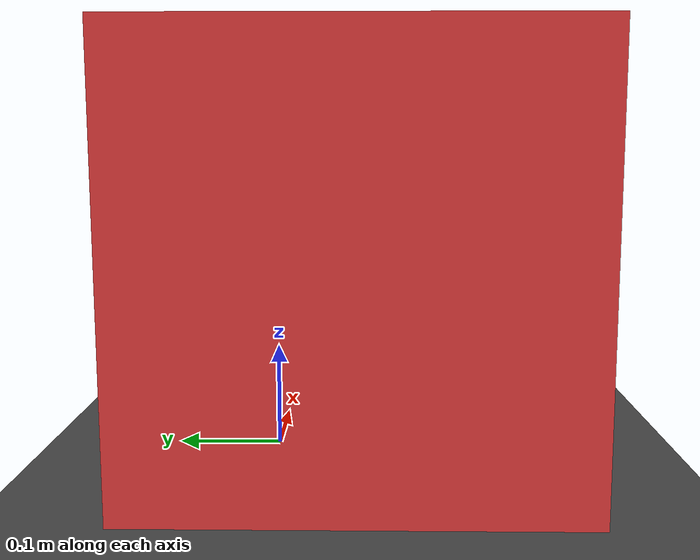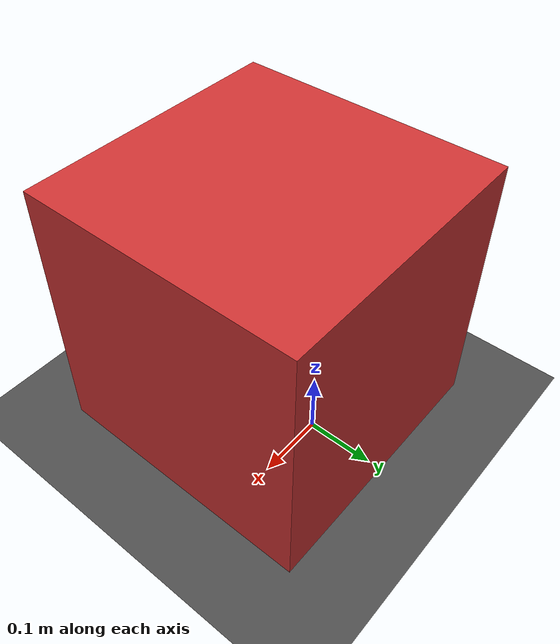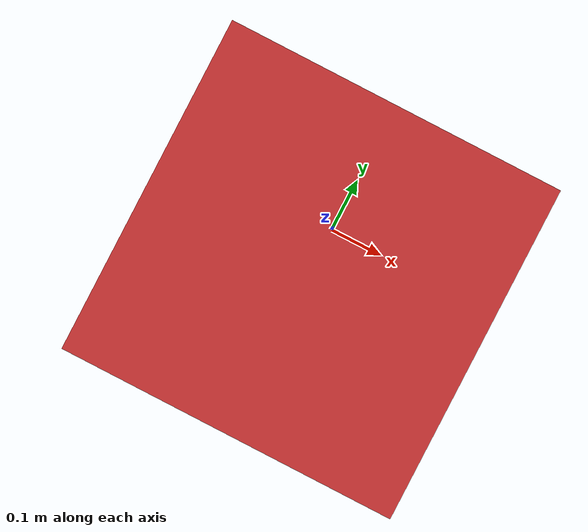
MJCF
<mujoco model="sphere_haptic_test">
  <option timestep="0.002"/>
  <worldbody>
    <light diffuse=".5 .5 .5" pos="0 0 2" dir="0 0 -1"/>
    <geom type="plane" size="2 2 0.1" rgba="0.3 0.3 0.3 1"/>

    <!-- Proxy: a real, dynamic, collidable body -->
    <body name="sphere" pos="0 0 0.05" gravcomp="1">
  <freejoint/>
  <geom name="sphere_geom" type="sphere" size="0.03" mass="0.05" rgba="0.2 0.6 1 1"/>
</body>

    <!-- Obstacle to push -->
    <body name="box" pos="0 -0.08 0.2">
      <geom name="box_geom" type="box" size="0.2 0.2 0.2" mass="0.2" rgba="0.8 0.2 0.2 1"/>
    </body>

    <!-- Device: driven directly from the real robot's TCP pose, no
         collision, no joint exactly like your existing mocap body -->
    <body name="mocap" mocap="true" pos="0 0 0.05">
      <geom type="sphere" size="0.01" contype="0" conaffinity="0" rgba="1 1 0 0.6"/>
    </body>
  </worldbody>
</mujoco>
